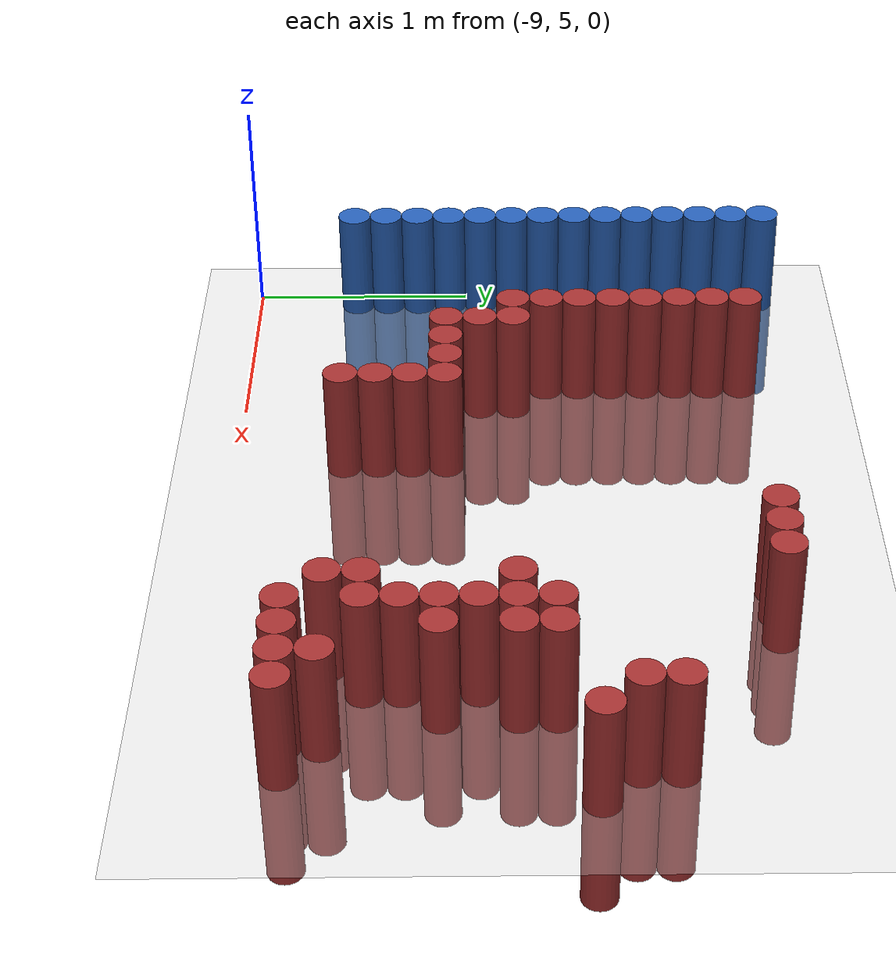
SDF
<sdf version="1.6">
 <world name="default">
  <model name="ground_plane">
   <static>1</static>
   <link name="link">
    <collision name="collision">
     <geometry><plane><normal>0 0 1</normal><size>100 100</size></plane></geometry>
     <surface><friction><ode><mu>100</mu><mu2>50</mu2></ode></friction></surface>
    </collision>
    <visual name="visual">
     <cast_shadows>0</cast_shadows>
     <geometry><plane><normal>0 0 1</normal><size>100 100</size></plane></geometry>
     <material>
      <script><uri>file://media/materials/scripts/gazebo.material</uri><name>Gazebo/Grey</name></script>
     </material>
    </visual>
   </link>
  </model>
  <model name="unit_cylinder_127">
   <static>1</static>
   <pose>-8.925000 5.475000 0.000000 0.000000 0.000000 0.000000</pose>
   <link name="link">
    <inertial>
     <mass>1</mass>
     <inertia><ixx>0.145833</ixx><ixy>0</ixy><ixz>0</ixz><iyy>0.145833</iyy><iyz>0</iyz><izz>0.125</izz></inertia>
    </inertial>
    <collision name="collision">
     <geometry><cylinder><radius>0.075000</radius><length>1</length></cylinder></geometry>
    </collision>
    <visual name="visual">
     <geometry><cylinder><radius>0.075000</radius><length>1</length></cylinder></geometry>
     <material>
      <ambient>0.152000 0.379000 0.720000 1</ambient>
      <diffuse>0.152000 0.379000 0.720000 1</diffuse>
     </material>
     <material>
      <script><name>Gazebo/Grey</name><uri>file://media/materials/scripts/gazebo.material</uri></script>
     </material>
    </visual>
   </link>
  </model>
  <model name="unit_cylinder_128">
   <static>1</static>
   <pose>-8.925000 5.625000 0.000000 0.000000 0.000000 0.000000</pose>
   <link name="link">
    <inertial>
     <mass>1</mass>
     <inertia><ixx>0.145833</ixx><ixy>0</ixy><ixz>0</ixz><iyy>0.145833</iyy><iyz>0</iyz><izz>0.125</izz></inertia>
    </inertial>
    <collision name="collision">
     <geometry><cylinder><radius>0.075000</radius><length>1</length></cylinder></geometry>
    </collision>
    <visual name="visual">
     <geometry><cylinder><radius>0.075000</radius><length>1</length></cylinder></geometry>
     <material>
      <ambient>0.152000 0.379000 0.720000 1</ambient>
      <diffuse>0.152000 0.379000 0.720000 1</diffuse>
     </material>
     <material>
      <script><name>Gazebo/Grey</name><uri>file://media/materials/scripts/gazebo.material</uri></script>
     </material>
    </visual>
   </link>
  </model>
  <model name="unit_cylinder_129">
   <static>1</static>
   <pose>-8.925000 5.775000 0.000000 0.000000 0.000000 0.000000</pose>
   <link name="link">
    <inertial>
     <mass>1</mass>
     <inertia><ixx>0.145833</ixx><ixy>0</ixy><ixz>0</ixz><iyy>0.145833</iyy><iyz>0</iyz><izz>0.125</izz></inertia>
    </inertial>
    <collision name="collision">
     <geometry><cylinder><radius>0.075000</radius><length>1</length></cylinder></geometry>
    </collision>
    <visual name="visual">
     <geometry><cylinder><radius>0.075000</radius><length>1</length></cylinder></geometry>
     <material>
      <ambient>0.152000 0.379000 0.720000 1</ambient>
      <diffuse>0.152000 0.379000 0.720000 1</diffuse>
     </material>
     <material>
      <script><name>Gazebo/Grey</name><uri>file://media/materials/scripts/gazebo.material</uri></script>
     </material>
    </visual>
   </link>
  </model>
  <model name="unit_cylinder_130">
   <static>1</static>
   <pose>-8.925000 5.925000 0.000000 0.000000 0.000000 0.000000</pose>
   <link name="link">
    <inertial>
     <mass>1</mass>
     <inertia><ixx>0.145833</ixx><ixy>0</ixy><ixz>0</ixz><iyy>0.145833</iyy><iyz>0</iyz><izz>0.125</izz></inertia>
    </inertial>
    <collision name="collision">
     <geometry><cylinder><radius>0.075000</radius><length>1</length></cylinder></geometry>
    </collision>
    <visual name="visual">
     <geometry><cylinder><radius>0.075000</radius><length>1</length></cylinder></geometry>
     <material>
      <ambient>0.152000 0.379000 0.720000 1</ambient>
      <diffuse>0.152000 0.379000 0.720000 1</diffuse>
     </material>
     <material>
      <script><name>Gazebo/Grey</name><uri>file://media/materials/scripts/gazebo.material</uri></script>
     </material>
    </visual>
   </link>
  </model>
  <model name="unit_cylinder_131">
   <static>1</static>
   <pose>-8.925000 6.075000 0.000000 0.000000 0.000000 0.000000</pose>
   <link name="link">
    <inertial>
     <mass>1</mass>
     <inertia><ixx>0.145833</ixx><ixy>0</ixy><ixz>0</ixz><iyy>0.145833</iyy><iyz>0</iyz><izz>0.125</izz></inertia>
    </inertial>
    <collision name="collision">
     <geometry><cylinder><radius>0.075000</radius><length>1</length></cylinder></geometry>
    </collision>
    <visual name="visual">
     <geometry><cylinder><radius>0.075000</radius><length>1</length></cylinder></geometry>
     <material>
      <ambient>0.152000 0.379000 0.720000 1</ambient>
      <diffuse>0.152000 0.379000 0.720000 1</diffuse>
     </material>
     <material>
      <script><name>Gazebo/Grey</name><uri>file://media/materials/scripts/gazebo.material</uri></script>
     </material>
    </visual>
   </link>
  </model>
  <model name="unit_cylinder_132">
   <static>1</static>
   <pose>-8.925000 6.225000 0.000000 0.000000 0.000000 0.000000</pose>
   <link name="link">
    <inertial>
     <mass>1</mass>
     <inertia><ixx>0.145833</ixx><ixy>0</ixy><ixz>0</ixz><iyy>0.145833</iyy><iyz>0</iyz><izz>0.125</izz></inertia>
    </inertial>
    <collision name="collision">
     <geometry><cylinder><radius>0.075000</radius><length>1</length></cylinder></geometry>
    </collision>
    <visual name="visual">
     <geometry><cylinder><radius>0.075000</radius><length>1</length></cylinder></geometry>
     <material>
      <ambient>0.152000 0.379000 0.720000 1</ambient>
      <diffuse>0.152000 0.379000 0.720000 1</diffuse>
     </material>
     <material>
      <script><name>Gazebo/Grey</name><uri>file://media/materials/scripts/gazebo.material</uri></script>
     </material>
    </visual>
   </link>
  </model>
  <model name="unit_cylinder_133">
   <static>1</static>
   <pose>-8.925000 6.375000 0.000000 0.000000 0.000000 0.000000</pose>
   <link name="link">
    <inertial>
     <mass>1</mass>
     <inertia><ixx>0.145833</ixx><ixy>0</ixy><ixz>0</ixz><iyy>0.145833</iyy><iyz>0</iyz><izz>0.125</izz></inertia>
    </inertial>
    <collision name="collision">
     <geometry><cylinder><radius>0.075000</radius><length>1</length></cylinder></geometry>
    </collision>
    <visual name="visual">
     <geometry><cylinder><radius>0.075000</radius><length>1</length></cylinder></geometry>
     <material>
      <ambient>0.152000 0.379000 0.720000 1</ambient>
      <diffuse>0.152000 0.379000 0.720000 1</diffuse>
     </material>
     <material>
      <script><name>Gazebo/Grey</name><uri>file://media/materials/scripts/gazebo.material</uri></script>
     </material>
    </visual>
   </link>
  </model>
  <model name="unit_cylinder_134">
   <static>1</static>
   <pose>-8.925000 6.525000 0.000000 0.000000 0.000000 0.000000</pose>
   <link name="link">
    <inertial>
     <mass>1</mass>
     <inertia><ixx>0.145833</ixx><ixy>0</ixy><ixz>0</ixz><iyy>0.145833</iyy><iyz>0</iyz><izz>0.125</izz></inertia>
    </inertial>
    <collision name="collision">
     <geometry><cylinder><radius>0.075000</radius><length>1</length></cylinder></geometry>
    </collision>
    <visual name="visual">
     <geometry><cylinder><radius>0.075000</radius><length>1</length></cylinder></geometry>
     <material>
      <ambient>0.152000 0.379000 0.720000 1</ambient>
      <diffuse>0.152000 0.379000 0.720000 1</diffuse>
     </material>
     <material>
      <script><name>Gazebo/Grey</name><uri>file://media/materials/scripts/gazebo.material</uri></script>
     </material>
    </visual>
   </link>
  </model>
  <model name="unit_cylinder_135">
   <static>1</static>
   <pose>-8.925000 6.675000 0.000000 0.000000 0.000000 0.000000</pose>
   <link name="link">
    <inertial>
     <mass>1</mass>
     <inertia><ixx>0.145833</ixx><ixy>0</ixy><ixz>0</ixz><iyy>0.145833</iyy><iyz>0</iyz><izz>0.125</izz></inertia>
    </inertial>
    <collision name="collision">
     <geometry><cylinder><radius>0.075000</radius><length>1</length></cylinder></geometry>
    </collision>
    <visual name="visual">
     <geometry><cylinder><radius>0.075000</radius><length>1</length></cylinder></geometry>
     <material>
      <ambient>0.152000 0.379000 0.720000 1</ambient>
      <diffuse>0.152000 0.379000 0.720000 1</diffuse>
     </material>
     <material>
      <script><name>Gazebo/Grey</name><uri>file://media/materials/scripts/gazebo.material</uri></script>
     </material>
    </visual>
   </link>
  </model>
  <model name="unit_cylinder_136">
   <static>1</static>
   <pose>-8.925000 6.825000 0.000000 0.000000 0.000000 0.000000</pose>
   <link name="link">
    <inertial>
     <mass>1</mass>
     <inertia><ixx>0.145833</ixx><ixy>0</ixy><ixz>0</ixz><iyy>0.145833</iyy><iyz>0</iyz><izz>0.125</izz></inertia>
    </inertial>
    <collision name="collision">
     <geometry><cylinder><radius>0.075000</radius><length>1</length></cylinder></geometry>
    </collision>
    <visual name="visual">
     <geometry><cylinder><radius>0.075000</radius><length>1</length></cylinder></geometry>
     <material>
      <ambient>0.152000 0.379000 0.720000 1</ambient>
      <diffuse>0.152000 0.379000 0.720000 1</diffuse>
     </material>
     <material>
      <script><name>Gazebo/Grey</name><uri>file://media/materials/scripts/gazebo.material</uri></script>
     </material>
    </visual>
   </link>
  </model>
  <model name="unit_cylinder_137">
   <static>1</static>
   <pose>-8.925000 6.975000 0.000000 0.000000 0.000000 0.000000</pose>
   <link name="link">
    <inertial>
     <mass>1</mass>
     <inertia><ixx>0.145833</ixx><ixy>0</ixy><ixz>0</ixz><iyy>0.145833</iyy><iyz>0</iyz><izz>0.125</izz></inertia>
    </inertial>
    <collision name="collision">
     <geometry><cylinder><radius>0.075000</radius><length>1</length></cylinder></geometry>
    </collision>
    <visual name="visual">
     <geometry><cylinder><radius>0.075000</radius><length>1</length></cylinder></geometry>
     <material>
      <ambient>0.152000 0.379000 0.720000 1</ambient>
      <diffuse>0.152000 0.379000 0.720000 1</diffuse>
     </material>
     <material>
      <script><name>Gazebo/Grey</name><uri>file://media/materials/scripts/gazebo.material</uri></script>
     </material>
    </visual>
   </link>
  </model>
  <model name="unit_cylinder_138">
   <static>1</static>
   <pose>-8.925000 7.125000 0.000000 0.000000 0.000000 0.000000</pose>
   <link name="link">
    <inertial>
     <mass>1</mass>
     <inertia><ixx>0.145833</ixx><ixy>0</ixy><ixz>0</ixz><iyy>0.145833</iyy><iyz>0</iyz><izz>0.125</izz></inertia>
    </inertial>
    <collision name="collision">
     <geometry><cylinder><radius>0.075000</radius><length>1</length></cylinder></geometry>
    </collision>
    <visual name="visual">
     <geometry><cylinder><radius>0.075000</radius><length>1</length></cylinder></geometry>
     <material>
      <ambient>0.152000 0.379000 0.720000 1</ambient>
      <diffuse>0.152000 0.379000 0.720000 1</diffuse>
     </material>
     <material>
      <script><name>Gazebo/Grey</name><uri>file://media/materials/scripts/gazebo.material</uri></script>
     </material>
    </visual>
   </link>
  </model>
  <model name="unit_cylinder_139">
   <static>1</static>
   <pose>-8.925000 7.275000 0.000000 0.000000 0.000000 0.000000</pose>
   <link name="link">
    <inertial>
     <mass>1</mass>
     <inertia><ixx>0.145833</ixx><ixy>0</ixy><ixz>0</ixz><iyy>0.145833</iyy><iyz>0</iyz><izz>0.125</izz></inertia>
    </inertial>
    <collision name="collision">
     <geometry><cylinder><radius>0.075000</radius><length>1</length></cylinder></geometry>
    </collision>
    <visual name="visual">
     <geometry><cylinder><radius>0.075000</radius><length>1</length></cylinder></geometry>
     <material>
      <ambient>0.152000 0.379000 0.720000 1</ambient>
      <diffuse>0.152000 0.379000 0.720000 1</diffuse>
     </material>
     <material>
      <script><name>Gazebo/Grey</name><uri>file://media/materials/scripts/gazebo.material</uri></script>
     </material>
    </visual>
   </link>
  </model>
  <model name="unit_cylinder_140">
   <static>1</static>
   <pose>-8.925000 7.425000 0.000000 0.000000 0.000000 0.000000</pose>
   <link name="link">
    <inertial>
     <mass>1</mass>
     <inertia><ixx>0.145833</ixx><ixy>0</ixy><ixz>0</ixz><iyy>0.145833</iyy><iyz>0</iyz><izz>0.125</izz></inertia>
    </inertial>
    <collision name="collision">
     <geometry><cylinder><radius>0.075000</radius><length>1</length></cylinder></geometry>
    </collision>
    <visual name="visual">
     <geometry><cylinder><radius>0.075000</radius><length>1</length></cylinder></geometry>
     <material>
      <ambient>0.152000 0.379000 0.720000 1</ambient>
      <diffuse>0.152000 0.379000 0.720000 1</diffuse>
     </material>
     <material>
      <script><name>Gazebo/Grey</name><uri>file://media/materials/scripts/gazebo.material</uri></script>
     </material>
    </visual>
   </link>
  </model>
  <model name="unit_cylinder_177">
   <static>1</static>
   <pose>-8.175000 6.225000 0.000000 0.000000 0.000000 0.000000</pose>
   <link name="link">
    <inertial>
     <mass>1</mass>
     <inertia><ixx>0.145833</ixx><ixy>0</ixy><ixz>0</ixz><iyy>0.145833</iyy><iyz>0</iyz><izz>0.125</izz></inertia>
    </inertial>
    <collision name="collision">
     <geometry><cylinder><radius>0.075000</radius><length>1</length></cylinder></geometry>
    </collision>
    <visual name="visual">
     <geometry><cylinder><radius>0.075000</radius><length>1</length></cylinder></geometry>
     <material>
      <ambient>0.648000 0.192000 0.192000 1</ambient>
      <diffuse>0.648000 0.192000 0.192000 1</diffuse>
     </material>
     <material>
      <script><name>Gazebo/Grey</name><uri>file://media/materials/scripts/gazebo.material</uri></script>
     </material>
    </visual>
   </link>
  </model>
  <model name="unit_cylinder_178">
   <static>1</static>
   <pose>-8.175000 6.375000 0.000000 0.000000 0.000000 0.000000</pose>
   <link name="link">
    <inertial>
     <mass>1</mass>
     <inertia><ixx>0.145833</ixx><ixy>0</ixy><ixz>0</ixz><iyy>0.145833</iyy><iyz>0</iyz><izz>0.125</izz></inertia>
    </inertial>
    <collision name="collision">
     <geometry><cylinder><radius>0.075000</radius><length>1</length></cylinder></geometry>
    </collision>
    <visual name="visual">
     <geometry><cylinder><radius>0.075000</radius><length>1</length></cylinder></geometry>
     <material>
      <ambient>0.648000 0.192000 0.192000 1</ambient>
      <diffuse>0.648000 0.192000 0.192000 1</diffuse>
     </material>
     <material>
      <script><name>Gazebo/Grey</name><uri>file://media/materials/scripts/gazebo.material</uri></script>
     </material>
    </visual>
   </link>
  </model>
  <model name="unit_cylinder_179">
   <static>1</static>
   <pose>-8.175000 6.525000 0.000000 0.000000 0.000000 0.000000</pose>
   <link name="link">
    <inertial>
     <mass>1</mass>
     <inertia><ixx>0.145833</ixx><ixy>0</ixy><ixz>0</ixz><iyy>0.145833</iyy><iyz>0</iyz><izz>0.125</izz></inertia>
    </inertial>
    <collision name="collision">
     <geometry><cylinder><radius>0.075000</radius><length>1</length></cylinder></geometry>
    </collision>
    <visual name="visual">
     <geometry><cylinder><radius>0.075000</radius><length>1</length></cylinder></geometry>
     <material>
      <ambient>0.648000 0.192000 0.192000 1</ambient>
      <diffuse>0.648000 0.192000 0.192000 1</diffuse>
     </material>
     <material>
      <script><name>Gazebo/Grey</name><uri>file://media/materials/scripts/gazebo.material</uri></script>
     </material>
    </visual>
   </link>
  </model>
  <model name="unit_cylinder_180">
   <static>1</static>
   <pose>-8.175000 6.675000 0.000000 0.000000 0.000000 0.000000</pose>
   <link name="link">
    <inertial>
     <mass>1</mass>
     <inertia><ixx>0.145833</ixx><ixy>0</ixy><ixz>0</ixz><iyy>0.145833</iyy><iyz>0</iyz><izz>0.125</izz></inertia>
    </inertial>
    <collision name="collision">
     <geometry><cylinder><radius>0.075000</radius><length>1</length></cylinder></geometry>
    </collision>
    <visual name="visual">
     <geometry><cylinder><radius>0.075000</radius><length>1</length></cylinder></geometry>
     <material>
      <ambient>0.648000 0.192000 0.192000 1</ambient>
      <diffuse>0.648000 0.192000 0.192000 1</diffuse>
     </material>
     <material>
      <script><name>Gazebo/Grey</name><uri>file://media/materials/scripts/gazebo.material</uri></script>
     </material>
    </visual>
   </link>
  </model>
  <model name="unit_cylinder_181">
   <static>1</static>
   <pose>-8.175000 6.825000 0.000000 0.000000 0.000000 0.000000</pose>
   <link name="link">
    <inertial>
     <mass>1</mass>
     <inertia><ixx>0.145833</ixx><ixy>0</ixy><ixz>0</ixz><iyy>0.145833</iyy><iyz>0</iyz><izz>0.125</izz></inertia>
    </inertial>
    <collision name="collision">
     <geometry><cylinder><radius>0.075000</radius><length>1</length></cylinder></geometry>
    </collision>
    <visual name="visual">
     <geometry><cylinder><radius>0.075000</radius><length>1</length></cylinder></geometry>
     <material>
      <ambient>0.648000 0.192000 0.192000 1</ambient>
      <diffuse>0.648000 0.192000 0.192000 1</diffuse>
     </material>
     <material>
      <script><name>Gazebo/Grey</name><uri>file://media/materials/scripts/gazebo.material</uri></script>
     </material>
    </visual>
   </link>
  </model>
  <model name="unit_cylinder_182">
   <static>1</static>
   <pose>-8.175000 6.975000 0.000000 0.000000 0.000000 0.000000</pose>
   <link name="link">
    <inertial>
     <mass>1</mass>
     <inertia><ixx>0.145833</ixx><ixy>0</ixy><ixz>0</ixz><iyy>0.145833</iyy><iyz>0</iyz><izz>0.125</izz></inertia>
    </inertial>
    <collision name="collision">
     <geometry><cylinder><radius>0.075000</radius><length>1</length></cylinder></geometry>
    </collision>
    <visual name="visual">
     <geometry><cylinder><radius>0.075000</radius><length>1</length></cylinder></geometry>
     <material>
      <ambient>0.648000 0.192000 0.192000 1</ambient>
      <diffuse>0.648000 0.192000 0.192000 1</diffuse>
     </material>
     <material>
      <script><name>Gazebo/Grey</name><uri>file://media/materials/scripts/gazebo.material</uri></script>
     </material>
    </visual>
   </link>
  </model>
  <model name="unit_cylinder_183">
   <static>1</static>
   <pose>-8.175000 7.125000 0.000000 0.000000 0.000000 0.000000</pose>
   <link name="link">
    <inertial>
     <mass>1</mass>
     <inertia><ixx>0.145833</ixx><ixy>0</ixy><ixz>0</ixz><iyy>0.145833</iyy><iyz>0</iyz><izz>0.125</izz></inertia>
    </inertial>
    <collision name="collision">
     <geometry><cylinder><radius>0.075000</radius><length>1</length></cylinder></geometry>
    </collision>
    <visual name="visual">
     <geometry><cylinder><radius>0.075000</radius><length>1</length></cylinder></geometry>
     <material>
      <ambient>0.648000 0.192000 0.192000 1</ambient>
      <diffuse>0.648000 0.192000 0.192000 1</diffuse>
     </material>
     <material>
      <script><name>Gazebo/Grey</name><uri>file://media/materials/scripts/gazebo.material</uri></script>
     </material>
    </visual>
   </link>
  </model>
  <model name="unit_cylinder_184">
   <static>1</static>
   <pose>-8.175000 7.275000 0.000000 0.000000 0.000000 0.000000</pose>
   <link name="link">
    <inertial>
     <mass>1</mass>
     <inertia><ixx>0.145833</ixx><ixy>0</ixy><ixz>0</ixz><iyy>0.145833</iyy><iyz>0</iyz><izz>0.125</izz></inertia>
    </inertial>
    <collision name="collision">
     <geometry><cylinder><radius>0.075000</radius><length>1</length></cylinder></geometry>
    </collision>
    <visual name="visual">
     <geometry><cylinder><radius>0.075000</radius><length>1</length></cylinder></geometry>
     <material>
      <ambient>0.648000 0.192000 0.192000 1</ambient>
      <diffuse>0.648000 0.192000 0.192000 1</diffuse>
     </material>
     <material>
      <script><name>Gazebo/Grey</name><uri>file://media/materials/scripts/gazebo.material</uri></script>
     </material>
    </visual>
   </link>
  </model>
  <model name="unit_cylinder_188">
   <static>1</static>
   <pose>-8.025000 5.925000 0.000000 0.000000 0.000000 0.000000</pose>
   <link name="link">
    <inertial>
     <mass>1</mass>
     <inertia><ixx>0.145833</ixx><ixy>0</ixy><ixz>0</ixz><iyy>0.145833</iyy><iyz>0</iyz><izz>0.125</izz></inertia>
    </inertial>
    <collision name="collision">
     <geometry><cylinder><radius>0.075000</radius><length>1</length></cylinder></geometry>
    </collision>
    <visual name="visual">
     <geometry><cylinder><radius>0.075000</radius><length>1</length></cylinder></geometry>
     <material>
      <ambient>0.648000 0.192000 0.192000 1</ambient>
      <diffuse>0.648000 0.192000 0.192000 1</diffuse>
     </material>
     <material>
      <script><name>Gazebo/Grey</name><uri>file://media/materials/scripts/gazebo.material</uri></script>
     </material>
    </visual>
   </link>
  </model>
  <model name="unit_cylinder_189">
   <static>1</static>
   <pose>-8.025000 6.075000 0.000000 0.000000 0.000000 0.000000</pose>
   <link name="link">
    <inertial>
     <mass>1</mass>
     <inertia><ixx>0.145833</ixx><ixy>0</ixy><ixz>0</ixz><iyy>0.145833</iyy><iyz>0</iyz><izz>0.125</izz></inertia>
    </inertial>
    <collision name="collision">
     <geometry><cylinder><radius>0.075000</radius><length>1</length></cylinder></geometry>
    </collision>
    <visual name="visual">
     <geometry><cylinder><radius>0.075000</radius><length>1</length></cylinder></geometry>
     <material>
      <ambient>0.648000 0.192000 0.192000 1</ambient>
      <diffuse>0.648000 0.192000 0.192000 1</diffuse>
     </material>
     <material>
      <script><name>Gazebo/Grey</name><uri>file://media/materials/scripts/gazebo.material</uri></script>
     </material>
    </visual>
   </link>
  </model>
  <model name="unit_cylinder_190">
   <static>1</static>
   <pose>-8.025000 6.225000 0.000000 0.000000 0.000000 0.000000</pose>
   <link name="link">
    <inertial>
     <mass>1</mass>
     <inertia><ixx>0.145833</ixx><ixy>0</ixy><ixz>0</ixz><iyy>0.145833</iyy><iyz>0</iyz><izz>0.125</izz></inertia>
    </inertial>
    <collision name="collision">
     <geometry><cylinder><radius>0.075000</radius><length>1</length></cylinder></geometry>
    </collision>
    <visual name="visual">
     <geometry><cylinder><radius>0.075000</radius><length>1</length></cylinder></geometry>
     <material>
      <ambient>0.648000 0.192000 0.192000 1</ambient>
      <diffuse>0.648000 0.192000 0.192000 1</diffuse>
     </material>
     <material>
      <script><name>Gazebo/Grey</name><uri>file://media/materials/scripts/gazebo.material</uri></script>
     </material>
    </visual>
   </link>
  </model>
  <model name="unit_cylinder_192">
   <static>1</static>
   <pose>-7.875000 5.925000 0.000000 0.000000 0.000000 0.000000</pose>
   <link name="link">
    <inertial>
     <mass>1</mass>
     <inertia><ixx>0.145833</ixx><ixy>0</ixy><ixz>0</ixz><iyy>0.145833</iyy><iyz>0</iyz><izz>0.125</izz></inertia>
    </inertial>
    <collision name="collision">
     <geometry><cylinder><radius>0.075000</radius><length>1</length></cylinder></geometry>
    </collision>
    <visual name="visual">
     <geometry><cylinder><radius>0.075000</radius><length>1</length></cylinder></geometry>
     <material>
      <ambient>0.648000 0.192000 0.192000 1</ambient>
      <diffuse>0.648000 0.192000 0.192000 1</diffuse>
     </material>
     <material>
      <script><name>Gazebo/Grey</name><uri>file://media/materials/scripts/gazebo.material</uri></script>
     </material>
    </visual>
   </link>
  </model>
  <model name="unit_cylinder_194">
   <static>1</static>
   <pose>-7.725000 5.925000 0.000000 0.000000 0.000000 0.000000</pose>
   <link name="link">
    <inertial>
     <mass>1</mass>
     <inertia><ixx>0.145833</ixx><ixy>0</ixy><ixz>0</ixz><iyy>0.145833</iyy><iyz>0</iyz><izz>0.125</izz></inertia>
    </inertial>
    <collision name="collision">
     <geometry><cylinder><radius>0.075000</radius><length>1</length></cylinder></geometry>
    </collision>
    <visual name="visual">
     <geometry><cylinder><radius>0.075000</radius><length>1</length></cylinder></geometry>
     <material>
      <ambient>0.648000 0.192000 0.192000 1</ambient>
      <diffuse>0.648000 0.192000 0.192000 1</diffuse>
     </material>
     <material>
      <script><name>Gazebo/Grey</name><uri>file://media/materials/scripts/gazebo.material</uri></script>
     </material>
    </visual>
   </link>
  </model>
  <model name="unit_cylinder_197">
   <static>1</static>
   <pose>-7.575000 5.475000 0.000000 0.000000 0.000000 0.000000</pose>
   <link name="link">
    <inertial>
     <mass>1</mass>
     <inertia><ixx>0.145833</ixx><ixy>0</ixy><ixz>0</ixz><iyy>0.145833</iyy><iyz>0</iyz><izz>0.125</izz></inertia>
    </inertial>
    <collision name="collision">
     <geometry><cylinder><radius>0.075000</radius><length>1</length></cylinder></geometry>
    </collision>
    <visual name="visual">
     <geometry><cylinder><radius>0.075000</radius><length>1</length></cylinder></geometry>
     <material>
      <ambient>0.648000 0.192000 0.192000 1</ambient>
      <diffuse>0.648000 0.192000 0.192000 1</diffuse>
     </material>
     <material>
      <script><name>Gazebo/Grey</name><uri>file://media/materials/scripts/gazebo.material</uri></script>
     </material>
    </visual>
   </link>
  </model>
  <model name="unit_cylinder_198">
   <static>1</static>
   <pose>-7.575000 5.625000 0.000000 0.000000 0.000000 0.000000</pose>
   <link name="link">
    <inertial>
     <mass>1</mass>
     <inertia><ixx>0.145833</ixx><ixy>0</ixy><ixz>0</ixz><iyy>0.145833</iyy><iyz>0</iyz><izz>0.125</izz></inertia>
    </inertial>
    <collision name="collision">
     <geometry><cylinder><radius>0.075000</radius><length>1</length></cylinder></geometry>
    </collision>
    <visual name="visual">
     <geometry><cylinder><radius>0.075000</radius><length>1</length></cylinder></geometry>
     <material>
      <ambient>0.648000 0.192000 0.192000 1</ambient>
      <diffuse>0.648000 0.192000 0.192000 1</diffuse>
     </material>
     <material>
      <script><name>Gazebo/Grey</name><uri>file://media/materials/scripts/gazebo.material</uri></script>
     </material>
    </visual>
   </link>
  </model>
  <model name="unit_cylinder_199">
   <static>1</static>
   <pose>-7.575000 5.775000 0.000000 0.000000 0.000000 0.000000</pose>
   <link name="link">
    <inertial>
     <mass>1</mass>
     <inertia><ixx>0.145833</ixx><ixy>0</ixy><ixz>0</ixz><iyy>0.145833</iyy><iyz>0</iyz><izz>0.125</izz></inertia>
    </inertial>
    <collision name="collision">
     <geometry><cylinder><radius>0.075000</radius><length>1</length></cylinder></geometry>
    </collision>
    <visual name="visual">
     <geometry><cylinder><radius>0.075000</radius><length>1</length></cylinder></geometry>
     <material>
      <ambient>0.648000 0.192000 0.192000 1</ambient>
      <diffuse>0.648000 0.192000 0.192000 1</diffuse>
     </material>
     <material>
      <script><name>Gazebo/Grey</name><uri>file://media/materials/scripts/gazebo.material</uri></script>
     </material>
    </visual>
   </link>
  </model>
  <model name="unit_cylinder_200">
   <static>1</static>
   <pose>-7.575000 5.925000 0.000000 0.000000 0.000000 0.000000</pose>
   <link name="link">
    <inertial>
     <mass>1</mass>
     <inertia><ixx>0.145833</ixx><ixy>0</ixy><ixz>0</ixz><iyy>0.145833</iyy><iyz>0</iyz><izz>0.125</izz></inertia>
    </inertial>
    <collision name="collision">
     <geometry><cylinder><radius>0.075000</radius><length>1</length></cylinder></geometry>
    </collision>
    <visual name="visual">
     <geometry><cylinder><radius>0.075000</radius><length>1</length></cylinder></geometry>
     <material>
      <ambient>0.648000 0.192000 0.192000 1</ambient>
      <diffuse>0.648000 0.192000 0.192000 1</diffuse>
     </material>
     <material>
      <script><name>Gazebo/Grey</name><uri>file://media/materials/scripts/gazebo.material</uri></script>
     </material>
    </visual>
   </link>
  </model>
  <model name="unit_cylinder_210">
   <static>1</static>
   <pose>-6.675000 7.275000 0.000000 0.000000 0.000000 0.000000</pose>
   <link name="link">
    <inertial>
     <mass>1</mass>
     <inertia><ixx>0.145833</ixx><ixy>0</ixy><ixz>0</ixz><iyy>0.145833</iyy><iyz>0</iyz><izz>0.125</izz></inertia>
    </inertial>
    <collision name="collision">
     <geometry><cylinder><radius>0.075000</radius><length>1</length></cylinder></geometry>
    </collision>
    <visual name="visual">
     <geometry><cylinder><radius>0.075000</radius><length>1</length></cylinder></geometry>
     <material>
      <ambient>0.648000 0.192000 0.192000 1</ambient>
      <diffuse>0.648000 0.192000 0.192000 1</diffuse>
     </material>
     <material>
      <script><name>Gazebo/Grey</name><uri>file://media/materials/scripts/gazebo.material</uri></script>
     </material>
    </visual>
   </link>
  </model>
  <model name="unit_cylinder_217">
   <static>1</static>
   <pose>-6.525000 7.275000 0.000000 0.000000 0.000000 0.000000</pose>
   <link name="link">
    <inertial>
     <mass>1</mass>
     <inertia><ixx>0.145833</ixx><ixy>0</ixy><ixz>0</ixz><iyy>0.145833</iyy><iyz>0</iyz><izz>0.125</izz></inertia>
    </inertial>
    <collision name="collision">
     <geometry><cylinder><radius>0.075000</radius><length>1</length></cylinder></geometry>
    </collision>
    <visual name="visual">
     <geometry><cylinder><radius>0.075000</radius><length>1</length></cylinder></geometry>
     <material>
      <ambient>0.648000 0.192000 0.192000 1</ambient>
      <diffuse>0.648000 0.192000 0.192000 1</diffuse>
     </material>
     <material>
      <script><name>Gazebo/Grey</name><uri>file://media/materials/scripts/gazebo.material</uri></script>
     </material>
    </visual>
   </link>
  </model>
  <model name="unit_cylinder_223">
   <static>1</static>
   <pose>-6.375000 7.275000 0.000000 0.000000 0.000000 0.000000</pose>
   <link name="link">
    <inertial>
     <mass>1</mass>
     <inertia><ixx>0.145833</ixx><ixy>0</ixy><ixz>0</ixz><iyy>0.145833</iyy><iyz>0</iyz><izz>0.125</izz></inertia>
    </inertial>
    <collision name="collision">
     <geometry><cylinder><radius>0.075000</radius><length>1</length></cylinder></geometry>
    </collision>
    <visual name="visual">
     <geometry><cylinder><radius>0.075000</radius><length>1</length></cylinder></geometry>
     <material>
      <ambient>0.648000 0.192000 0.192000 1</ambient>
      <diffuse>0.648000 0.192000 0.192000 1</diffuse>
     </material>
     <material>
      <script><name>Gazebo/Grey</name><uri>file://media/materials/scripts/gazebo.material</uri></script>
     </material>
    </visual>
   </link>
  </model>
  <model name="unit_cylinder_226">
   <static>1</static>
   <pose>-6.225000 5.475000 0.000000 0.000000 0.000000 0.000000</pose>
   <link name="link">
    <inertial>
     <mass>1</mass>
     <inertia><ixx>0.145833</ixx><ixy>0</ixy><ixz>0</ixz><iyy>0.145833</iyy><iyz>0</iyz><izz>0.125</izz></inertia>
    </inertial>
    <collision name="collision">
     <geometry><cylinder><radius>0.075000</radius><length>1</length></cylinder></geometry>
    </collision>
    <visual name="visual">
     <geometry><cylinder><radius>0.075000</radius><length>1</length></cylinder></geometry>
     <material>
      <ambient>0.648000 0.192000 0.192000 1</ambient>
      <diffuse>0.648000 0.192000 0.192000 1</diffuse>
     </material>
     <material>
      <script><name>Gazebo/Grey</name><uri>file://media/materials/scripts/gazebo.material</uri></script>
     </material>
    </visual>
   </link>
  </model>
  <model name="unit_cylinder_227">
   <static>1</static>
   <pose>-6.225000 5.625000 0.000000 0.000000 0.000000 0.000000</pose>
   <link name="link">
    <inertial>
     <mass>1</mass>
     <inertia><ixx>0.145833</ixx><ixy>0</ixy><ixz>0</ixz><iyy>0.145833</iyy><iyz>0</iyz><izz>0.125</izz></inertia>
    </inertial>
    <collision name="collision">
     <geometry><cylinder><radius>0.075000</radius><length>1</length></cylinder></geometry>
    </collision>
    <visual name="visual">
     <geometry><cylinder><radius>0.075000</radius><length>1</length></cylinder></geometry>
     <material>
      <ambient>0.648000 0.192000 0.192000 1</ambient>
      <diffuse>0.648000 0.192000 0.192000 1</diffuse>
     </material>
     <material>
      <script><name>Gazebo/Grey</name><uri>file://media/materials/scripts/gazebo.material</uri></script>
     </material>
    </visual>
   </link>
  </model>
  <model name="unit_cylinder_228">
   <static>1</static>
   <pose>-6.225000 6.225000 0.000000 0.000000 0.000000 0.000000</pose>
   <link name="link">
    <inertial>
     <mass>1</mass>
     <inertia><ixx>0.145833</ixx><ixy>0</ixy><ixz>0</ixz><iyy>0.145833</iyy><iyz>0</iyz><izz>0.125</izz></inertia>
    </inertial>
    <collision name="collision">
     <geometry><cylinder><radius>0.075000</radius><length>1</length></cylinder></geometry>
    </collision>
    <visual name="visual">
     <geometry><cylinder><radius>0.075000</radius><length>1</length></cylinder></geometry>
     <material>
      <ambient>0.648000 0.192000 0.192000 1</ambient>
      <diffuse>0.648000 0.192000 0.192000 1</diffuse>
     </material>
     <material>
      <script><name>Gazebo/Grey</name><uri>file://media/materials/scripts/gazebo.material</uri></script>
     </material>
    </visual>
   </link>
  </model>
  <model name="unit_cylinder_229">
   <static>1</static>
   <pose>-6.075000 5.325000 0.000000 0.000000 0.000000 0.000000</pose>
   <link name="link">
    <inertial>
     <mass>1</mass>
     <inertia><ixx>0.145833</ixx><ixy>0</ixy><ixz>0</ixz><iyy>0.145833</iyy><iyz>0</iyz><izz>0.125</izz></inertia>
    </inertial>
    <collision name="collision">
     <geometry><cylinder><radius>0.075000</radius><length>1</length></cylinder></geometry>
    </collision>
    <visual name="visual">
     <geometry><cylinder><radius>0.075000</radius><length>1</length></cylinder></geometry>
     <material>
      <ambient>0.648000 0.192000 0.192000 1</ambient>
      <diffuse>0.648000 0.192000 0.192000 1</diffuse>
     </material>
     <material>
      <script><name>Gazebo/Grey</name><uri>file://media/materials/scripts/gazebo.material</uri></script>
     </material>
    </visual>
   </link>
  </model>
  <model name="unit_cylinder_230">
   <static>1</static>
   <pose>-6.075000 5.625000 0.000000 0.000000 0.000000 0.000000</pose>
   <link name="link">
    <inertial>
     <mass>1</mass>
     <inertia><ixx>0.145833</ixx><ixy>0</ixy><ixz>0</ixz><iyy>0.145833</iyy><iyz>0</iyz><izz>0.125</izz></inertia>
    </inertial>
    <collision name="collision">
     <geometry><cylinder><radius>0.075000</radius><length>1</length></cylinder></geometry>
    </collision>
    <visual name="visual">
     <geometry><cylinder><radius>0.075000</radius><length>1</length></cylinder></geometry>
     <material>
      <ambient>0.648000 0.192000 0.192000 1</ambient>
      <diffuse>0.648000 0.192000 0.192000 1</diffuse>
     </material>
     <material>
      <script><name>Gazebo/Grey</name><uri>file://media/materials/scripts/gazebo.material</uri></script>
     </material>
    </visual>
   </link>
  </model>
  <model name="unit_cylinder_231">
   <static>1</static>
   <pose>-6.075000 5.775000 0.000000 0.000000 0.000000 0.000000</pose>
   <link name="link">
    <inertial>
     <mass>1</mass>
     <inertia><ixx>0.145833</ixx><ixy>0</ixy><ixz>0</ixz><iyy>0.145833</iyy><iyz>0</iyz><izz>0.125</izz></inertia>
    </inertial>
    <collision name="collision">
     <geometry><cylinder><radius>0.075000</radius><length>1</length></cylinder></geometry>
    </collision>
    <visual name="visual">
     <geometry><cylinder><radius>0.075000</radius><length>1</length></cylinder></geometry>
     <material>
      <ambient>0.648000 0.192000 0.192000 1</ambient>
      <diffuse>0.648000 0.192000 0.192000 1</diffuse>
     </material>
     <material>
      <script><name>Gazebo/Grey</name><uri>file://media/materials/scripts/gazebo.material</uri></script>
     </material>
    </visual>
   </link>
  </model>
  <model name="unit_cylinder_232">
   <static>1</static>
   <pose>-6.075000 5.925000 0.000000 0.000000 0.000000 0.000000</pose>
   <link name="link">
    <inertial>
     <mass>1</mass>
     <inertia><ixx>0.145833</ixx><ixy>0</ixy><ixz>0</ixz><iyy>0.145833</iyy><iyz>0</iyz><izz>0.125</izz></inertia>
    </inertial>
    <collision name="collision">
     <geometry><cylinder><radius>0.075000</radius><length>1</length></cylinder></geometry>
    </collision>
    <visual name="visual">
     <geometry><cylinder><radius>0.075000</radius><length>1</length></cylinder></geometry>
     <material>
      <ambient>0.648000 0.192000 0.192000 1</ambient>
      <diffuse>0.648000 0.192000 0.192000 1</diffuse>
     </material>
     <material>
      <script><name>Gazebo/Grey</name><uri>file://media/materials/scripts/gazebo.material</uri></script>
     </material>
    </visual>
   </link>
  </model>
  <model name="unit_cylinder_233">
   <static>1</static>
   <pose>-6.075000 6.075000 0.000000 0.000000 0.000000 0.000000</pose>
   <link name="link">
    <inertial>
     <mass>1</mass>
     <inertia><ixx>0.145833</ixx><ixy>0</ixy><ixz>0</ixz><iyy>0.145833</iyy><iyz>0</iyz><izz>0.125</izz></inertia>
    </inertial>
    <collision name="collision">
     <geometry><cylinder><radius>0.075000</radius><length>1</length></cylinder></geometry>
    </collision>
    <visual name="visual">
     <geometry><cylinder><radius>0.075000</radius><length>1</length></cylinder></geometry>
     <material>
      <ambient>0.648000 0.192000 0.192000 1</ambient>
      <diffuse>0.648000 0.192000 0.192000 1</diffuse>
     </material>
     <material>
      <script><name>Gazebo/Grey</name><uri>file://media/materials/scripts/gazebo.material</uri></script>
     </material>
    </visual>
   </link>
  </model>
  <model name="unit_cylinder_234">
   <static>1</static>
   <pose>-6.075000 6.225000 0.000000 0.000000 0.000000 0.000000</pose>
   <link name="link">
    <inertial>
     <mass>1</mass>
     <inertia><ixx>0.145833</ixx><ixy>0</ixy><ixz>0</ixz><iyy>0.145833</iyy><iyz>0</iyz><izz>0.125</izz></inertia>
    </inertial>
    <collision name="collision">
     <geometry><cylinder><radius>0.075000</radius><length>1</length></cylinder></geometry>
    </collision>
    <visual name="visual">
     <geometry><cylinder><radius>0.075000</radius><length>1</length></cylinder></geometry>
     <material>
      <ambient>0.648000 0.192000 0.192000 1</ambient>
      <diffuse>0.648000 0.192000 0.192000 1</diffuse>
     </material>
     <material>
      <script><name>Gazebo/Grey</name><uri>file://media/materials/scripts/gazebo.material</uri></script>
     </material>
    </visual>
   </link>
  </model>
  <model name="unit_cylinder_235">
   <static>1</static>
   <pose>-6.075000 6.375000 0.000000 0.000000 0.000000 0.000000</pose>
   <link name="link">
    <inertial>
     <mass>1</mass>
     <inertia><ixx>0.145833</ixx><ixy>0</ixy><ixz>0</ixz><iyy>0.145833</iyy><iyz>0</iyz><izz>0.125</izz></inertia>
    </inertial>
    <collision name="collision">
     <geometry><cylinder><radius>0.075000</radius><length>1</length></cylinder></geometry>
    </collision>
    <visual name="visual">
     <geometry><cylinder><radius>0.075000</radius><length>1</length></cylinder></geometry>
     <material>
      <ambient>0.648000 0.192000 0.192000 1</ambient>
      <diffuse>0.648000 0.192000 0.192000 1</diffuse>
     </material>
     <material>
      <script><name>Gazebo/Grey</name><uri>file://media/materials/scripts/gazebo.material</uri></script>
     </material>
    </visual>
   </link>
  </model>
  <model name="unit_cylinder_237">
   <static>1</static>
   <pose>-5.925000 5.325000 0.000000 0.000000 0.000000 0.000000</pose>
   <link name="link">
    <inertial>
     <mass>1</mass>
     <inertia><ixx>0.145833</ixx><ixy>0</ixy><ixz>0</ixz><iyy>0.145833</iyy><iyz>0</iyz><izz>0.125</izz></inertia>
    </inertial>
    <collision name="collision">
     <geometry><cylinder><radius>0.075000</radius><length>1</length></cylinder></geometry>
    </collision>
    <visual name="visual">
     <geometry><cylinder><radius>0.075000</radius><length>1</length></cylinder></geometry>
     <material>
      <ambient>0.648000 0.192000 0.192000 1</ambient>
      <diffuse>0.648000 0.192000 0.192000 1</diffuse>
     </material>
     <material>
      <script><name>Gazebo/Grey</name><uri>file://media/materials/scripts/gazebo.material</uri></script>
     </material>
    </visual>
   </link>
  </model>
  <model name="unit_cylinder_238">
   <static>1</static>
   <pose>-5.925000 5.925000 0.000000 0.000000 0.000000 0.000000</pose>
   <link name="link">
    <inertial>
     <mass>1</mass>
     <inertia><ixx>0.145833</ixx><ixy>0</ixy><ixz>0</ixz><iyy>0.145833</iyy><iyz>0</iyz><izz>0.125</izz></inertia>
    </inertial>
    <collision name="collision">
     <geometry><cylinder><radius>0.075000</radius><length>1</length></cylinder></geometry>
    </collision>
    <visual name="visual">
     <geometry><cylinder><radius>0.075000</radius><length>1</length></cylinder></geometry>
     <material>
      <ambient>0.648000 0.192000 0.192000 1</ambient>
      <diffuse>0.648000 0.192000 0.192000 1</diffuse>
     </material>
     <material>
      <script><name>Gazebo/Grey</name><uri>file://media/materials/scripts/gazebo.material</uri></script>
     </material>
    </visual>
   </link>
  </model>
  <model name="unit_cylinder_239">
   <static>1</static>
   <pose>-5.925000 6.225000 0.000000 0.000000 0.000000 0.000000</pose>
   <link name="link">
    <inertial>
     <mass>1</mass>
     <inertia><ixx>0.145833</ixx><ixy>0</ixy><ixz>0</ixz><iyy>0.145833</iyy><iyz>0</iyz><izz>0.125</izz></inertia>
    </inertial>
    <collision name="collision">
     <geometry><cylinder><radius>0.075000</radius><length>1</length></cylinder></geometry>
    </collision>
    <visual name="visual">
     <geometry><cylinder><radius>0.075000</radius><length>1</length></cylinder></geometry>
     <material>
      <ambient>0.648000 0.192000 0.192000 1</ambient>
      <diffuse>0.648000 0.192000 0.192000 1</diffuse>
     </material>
     <material>
      <script><name>Gazebo/Grey</name><uri>file://media/materials/scripts/gazebo.material</uri></script>
     </material>
    </visual>
   </link>
  </model>
  <model name="unit_cylinder_240">
   <static>1</static>
   <pose>-5.925000 6.375000 0.000000 0.000000 0.000000 0.000000</pose>
   <link name="link">
    <inertial>
     <mass>1</mass>
     <inertia><ixx>0.145833</ixx><ixy>0</ixy><ixz>0</ixz><iyy>0.145833</iyy><iyz>0</iyz><izz>0.125</izz></inertia>
    </inertial>
    <collision name="collision">
     <geometry><cylinder><radius>0.075000</radius><length>1</length></cylinder></geometry>
    </collision>
    <visual name="visual">
     <geometry><cylinder><radius>0.075000</radius><length>1</length></cylinder></geometry>
     <material>
      <ambient>0.648000 0.192000 0.192000 1</ambient>
      <diffuse>0.648000 0.192000 0.192000 1</diffuse>
     </material>
     <material>
      <script><name>Gazebo/Grey</name><uri>file://media/materials/scripts/gazebo.material</uri></script>
     </material>
    </visual>
   </link>
  </model>
  <model name="unit_cylinder_242">
   <static>1</static>
   <pose>-5.775000 5.325000 0.000000 0.000000 0.000000 0.000000</pose>
   <link name="link">
    <inertial>
     <mass>1</mass>
     <inertia><ixx>0.145833</ixx><ixy>0</ixy><ixz>0</ixz><iyy>0.145833</iyy><iyz>0</iyz><izz>0.125</izz></inertia>
    </inertial>
    <collision name="collision">
     <geometry><cylinder><radius>0.075000</radius><length>1</length></cylinder></geometry>
    </collision>
    <visual name="visual">
     <geometry><cylinder><radius>0.075000</radius><length>1</length></cylinder></geometry>
     <material>
      <ambient>0.648000 0.192000 0.192000 1</ambient>
      <diffuse>0.648000 0.192000 0.192000 1</diffuse>
     </material>
     <material>
      <script><name>Gazebo/Grey</name><uri>file://media/materials/scripts/gazebo.material</uri></script>
     </material>
    </visual>
   </link>
  </model>
  <model name="unit_cylinder_243">
   <static>1</static>
   <pose>-5.775000 5.475000 0.000000 0.000000 0.000000 0.000000</pose>
   <link name="link">
    <inertial>
     <mass>1</mass>
     <inertia><ixx>0.145833</ixx><ixy>0</ixy><ixz>0</ixz><iyy>0.145833</iyy><iyz>0</iyz><izz>0.125</izz></inertia>
    </inertial>
    <collision name="collision">
     <geometry><cylinder><radius>0.075000</radius><length>1</length></cylinder></geometry>
    </collision>
    <visual name="visual">
     <geometry><cylinder><radius>0.075000</radius><length>1</length></cylinder></geometry>
     <material>
      <ambient>0.648000 0.192000 0.192000 1</ambient>
      <diffuse>0.648000 0.192000 0.192000 1</diffuse>
     </material>
     <material>
      <script><name>Gazebo/Grey</name><uri>file://media/materials/scripts/gazebo.material</uri></script>
     </material>
    </visual>
   </link>
  </model>
  <model name="unit_cylinder_245">
   <static>1</static>
   <pose>-5.625000 5.325000 0.000000 0.000000 0.000000 0.000000</pose>
   <link name="link">
    <inertial>
     <mass>1</mass>
     <inertia><ixx>0.145833</ixx><ixy>0</ixy><ixz>0</ixz><iyy>0.145833</iyy><iyz>0</iyz><izz>0.125</izz></inertia>
    </inertial>
    <collision name="collision">
     <geometry><cylinder><radius>0.075000</radius><length>1</length></cylinder></geometry>
    </collision>
    <visual name="visual">
     <geometry><cylinder><radius>0.075000</radius><length>1</length></cylinder></geometry>
     <material>
      <ambient>0.648000 0.192000 0.192000 1</ambient>
      <diffuse>0.648000 0.192000 0.192000 1</diffuse>
     </material>
     <material>
      <script><name>Gazebo/Grey</name><uri>file://media/materials/scripts/gazebo.material</uri></script>
     </material>
    </visual>
   </link>
  </model>
  <model name="unit_cylinder_246">
   <static>1</static>
   <pose>-5.625000 6.675000 0.000000 0.000000 0.000000 0.000000</pose>
   <link name="link">
    <inertial>
     <mass>1</mass>
     <inertia><ixx>0.145833</ixx><ixy>0</ixy><ixz>0</ixz><iyy>0.145833</iyy><iyz>0</iyz><izz>0.125</izz></inertia>
    </inertial>
    <collision name="collision">
     <geometry><cylinder><radius>0.075000</radius><length>1</length></cylinder></geometry>
    </collision>
    <visual name="visual">
     <geometry><cylinder><radius>0.075000</radius><length>1</length></cylinder></geometry>
     <material>
      <ambient>0.648000 0.192000 0.192000 1</ambient>
      <diffuse>0.648000 0.192000 0.192000 1</diffuse>
     </material>
     <material>
      <script><name>Gazebo/Grey</name><uri>file://media/materials/scripts/gazebo.material</uri></script>
     </material>
    </visual>
   </link>
  </model>
  <model name="unit_cylinder_247">
   <static>1</static>
   <pose>-5.625000 6.825000 0.000000 0.000000 0.000000 0.000000</pose>
   <link name="link">
    <inertial>
     <mass>1</mass>
     <inertia><ixx>0.145833</ixx><ixy>0</ixy><ixz>0</ixz><iyy>0.145833</iyy><iyz>0</iyz><izz>0.125</izz></inertia>
    </inertial>
    <collision name="collision">
     <geometry><cylinder><radius>0.075000</radius><length>1</length></cylinder></geometry>
    </collision>
    <visual name="visual">
     <geometry><cylinder><radius>0.075000</radius><length>1</length></cylinder></geometry>
     <material>
      <ambient>0.648000 0.192000 0.192000 1</ambient>
      <diffuse>0.648000 0.192000 0.192000 1</diffuse>
     </material>
     <material>
      <script><name>Gazebo/Grey</name><uri>file://media/materials/scripts/gazebo.material</uri></script>
     </material>
    </visual>
   </link>
  </model>
  <model name="unit_cylinder_248">
   <static>1</static>
   <pose>-5.475000 6.525000 0.000000 0.000000 0.000000 0.000000</pose>
   <link name="link">
    <inertial>
     <mass>1</mass>
     <inertia><ixx>0.145833</ixx><ixy>0</ixy><ixz>0</ixz><iyy>0.145833</iyy><iyz>0</iyz><izz>0.125</izz></inertia>
    </inertial>
    <collision name="collision">
     <geometry><cylinder><radius>0.075000</radius><length>1</length></cylinder></geometry>
    </collision>
    <visual name="visual">
     <geometry><cylinder><radius>0.075000</radius><length>1</length></cylinder></geometry>
     <material>
      <ambient>0.648000 0.192000 0.192000 1</ambient>
      <diffuse>0.648000 0.192000 0.192000 1</diffuse>
     </material>
     <material>
      <script><name>Gazebo/Grey</name><uri>file://media/materials/scripts/gazebo.material</uri></script>
     </material>
    </visual>
   </link>
  </model>
 </world>
</sdf>
